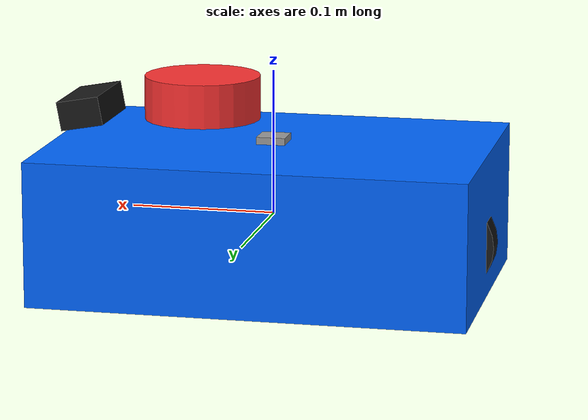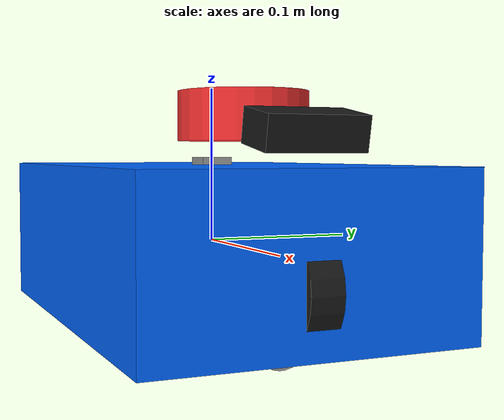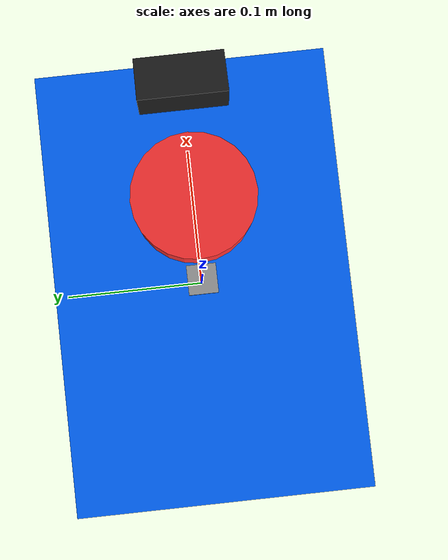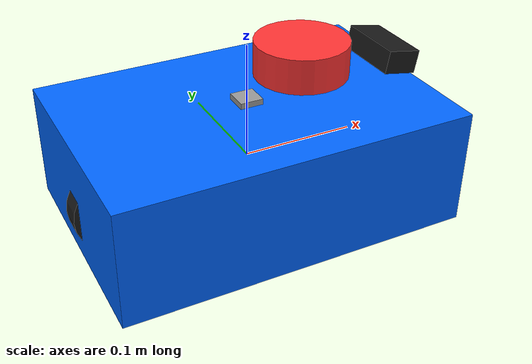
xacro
<?xml version="1.0"?>
<!--
  mini_car：两轮差速小车模型
  Xacro 三大件：property（常量）、macro（可复用块）、include（拆分文件）
-->
<robot xmlns:xacro="http://www.ros.org/wiki/xacro" name="mini_car">

  <!-- ============ 常量：改一处，全车生效 ============ -->
  <xacro:property name="wheel_radius" value="0.035"/>
  <xacro:property name="wheel_width" value="0.02"/>
  <xacro:property name="wheel_separation" value="0.24"/>
  <xacro:property name="base_length" value="0.30"/>
  <xacro:property name="base_width" value="0.20"/>
  <xacro:property name="base_height" value="0.10"/>

  <!-- 材质 -->
  <material name="black"><color rgba="0.1 0.1 0.1 1"/></material>
  <material name="blue"><color rgba="0 0.4 1 1"/></material>
  <material name="red"><color rgba="1 0.2 0.2 1"/></material>
  <material name="gray"><color rgba="0.6 0.6 0.6 1"/></material>

  <!-- 惯性宏：实心圆柱的惯性张量公式（绕柱轴 izz = m*r²/2） -->
  <xacro:macro name="cylinder_inertia" params="m r h">
    <inertial>
      <mass value="${m}"/>
      <inertia ixx="${m*(3*r*r+h*h)/12}" ixy="0" ixz="0"
               iyy="${m*(3*r*r+h*h)/12}" iyz="0"
               izz="${m*r*r/2}"/>
    </inertial>
  </xacro:macro>

  <!-- 轮子宏：左/右轮结构相同，只差安装位置与方向 -->
  <xacro:macro name="wheel" params="prefix x_reflect">
    <link name="${prefix}_wheel">
      <visual>
        <!-- 圆柱默认轴沿 Z，轮子轴应沿 Y，故绕 X 转 90° -->
        <geometry><cylinder radius="${wheel_radius}" length="${wheel_width}"/></geometry>
        <origin xyz="0 0 0" rpy="${pi/2} 0 0"/>
        <material name="black"/>
      </visual>
      <collision>
        <geometry><cylinder radius="${wheel_radius}" length="${wheel_width}"/></geometry>
        <origin xyz="0 0 0" rpy="${pi/2} 0 0"/>
      </collision>
      <xacro:cylinder_inertia m="0.1" r="${wheel_radius}" h="${wheel_width}"/>
    </link>

    <!-- continuous：轮子可无限旋转 -->
    <joint name="${prefix}_wheel_joint" type="continuous">
      <parent link="base_link"/>
      <child link="${prefix}_wheel"/>
      <origin xyz="${x_reflect * wheel_separation/2} 0 ${-base_height/2 + wheel_radius}"/>
      <axis xyz="0 1 0"/>
      <limit effort="10" velocity="10"/>
    </joint>

    <!-- 传动：把执行器(电机)速度映射到关节，ros2_control 读取 -->
    <transmission name="${prefix}_wheel_trans">
      <type>transmission_interface/SimpleTransmission</type>
      <joint name="${prefix}_wheel_joint">
        <hardwareInterface>hardware_interface/VelocityJointInterface</hardwareInterface>
      </joint>
      <actuator name="${prefix}_wheel_motor">
        <hardwareInterface>hardware_interface/VelocityJointInterface</hardwareInterface>
        <mechanicalReduction>1</mechanicalReduction>
      </actuator>
    </transmission>
  </xacro:macro>

  <!-- ============ 车身 ============ -->
  <link name="base_link">
    <visual>
      <geometry><box size="${base_length} ${base_width} ${base_height}"/></geometry>
      <material name="blue"/>
    </visual>
    <collision>
      <geometry><box size="${base_length} ${base_width} ${base_height}"/></geometry>
    </collision>
    <inertial>
      <mass value="1.0"/>
      <inertia ixx="0.006" ixy="0" ixz="0" iyy="0.008" iyz="0" izz="0.012"/>
    </inertial>
  </link>

  <!-- 两个驱动轮 -->
  <xacro:wheel prefix="left" x_reflect="1"/>
  <xacro:wheel prefix="right" x_reflect="-1"/>

  <!-- 万向轮（车头支撑，fixed 关节） -->
  <link name="caster_wheel">
    <visual>
      <geometry><sphere radius="0.015"/></geometry>
      <material name="gray"/>
    </visual>
    <collision>
      <geometry><sphere radius="0.015"/></geometry>
    </collision>
    <inertial>
      <mass value="0.01"/>
      <inertia ixx="0.00001" ixy="0" ixz="0" iyy="0.00001" iyz="0" izz="0.00001"/>
    </inertial>
  </link>
  <joint name="caster_joint" type="fixed">
    <parent link="base_link"/>
    <child link="caster_wheel"/>
    <origin xyz="${base_length/2 - 0.05} 0 ${-base_height/2}"/>
  </joint>

  <!-- ============ 激光雷达 ============ -->
  <link name="lidar_link">
    <visual>
      <geometry><cylinder radius="0.04" length="0.03"/></geometry>
      <material name="red"/>
    </visual>
    <collision>
      <geometry><cylinder radius="0.04" length="0.03"/></geometry>
    </collision>
    <xacro:cylinder_inertia m="0.15" r="0.04" h="0.03"/>
  </link>
  <joint name="lidar_joint" type="fixed">
    <parent link="base_link"/>
    <child link="lidar_link"/>
    <origin xyz="0.05 0 ${base_height/2 + 0.03}"/>
  </joint>
  <gazebo reference="lidar_link">
    <sensor type="ray" name="lidar">
      <pose>0 0 0 0 0 0</pose>
      <ray>
        <scan>
          <horizontal>
            <samples>360</samples>
            <resolution>1</resolution>
            <min_angle>-${pi}</min_angle>
            <max_angle>${pi}</max_angle>
          </horizontal>
        </scan>
        <range>
          <min>0.1</min>
          <max>12.0</max>
          <resolution>0.01</resolution>
        </range>
      </ray>
      <plugin name="gazebo_ros_lidar" filename="libgazebo_ros_ray_sensor.so">
        <ros>
          <namespace>/mini_car</namespace>
          <remapping>~/out:=scan</remapping>
        </ros>
        <output_type>sensor_msgs/LaserScan</output_type>
        <frame_name>lidar_link</frame_name>
      </plugin>
    </sensor>
  </gazebo>

  <!-- ============ IMU ============ -->
  <link name="imu_link">
    <visual>
      <geometry><box size="0.02 0.02 0.01"/></geometry>
      <material name="gray"/>
    </visual>
    <collision>
      <geometry><box size="0.02 0.02 0.01"/></geometry>
    </collision>
    <inertial>
      <mass value="0.01"/>
      <inertia ixx="0.00001" ixy="0" ixz="0" iyy="0.00001" iyz="0" izz="0.00001"/>
    </inertial>
  </link>
  <joint name="imu_joint" type="fixed">
    <parent link="base_link"/>
    <child link="imu_link"/>
    <origin xyz="0 0 ${base_height/2}"/>
  </joint>
  <gazebo reference="imu_link">
    <sensor type="imu" name="imu">
      <plugin name="gazebo_ros_imu" filename="libgazebo_ros_imu_sensor.so">
        <ros>
          <namespace>/mini_car</namespace>
          <remapping>~/out:=imu</remapping>
        </ros>
        <initial_orientation_as_reference>false</initial_orientation_as_reference>
      </plugin>
    </sensor>
  </gazebo>

  <!-- ============ 深度相机 ============ -->
  <link name="camera_link">
    <visual>
      <geometry><box size="0.03 0.06 0.02"/></geometry>
      <material name="black"/>
    </visual>
    <collision>
      <geometry><box size="0.03 0.06 0.02"/></geometry>
    </collision>
    <inertial>
      <mass value="0.02"/>
      <inertia ixx="0.00001" ixy="0" ixz="0" iyy="0.00001" iyz="0" izz="0.00001"/>
    </inertial>
  </link>
  <joint name="camera_joint" type="fixed">
    <parent link="base_link"/>
    <child link="camera_link"/>
    <!-- 装在车头，向下俯视 10° -->
    <origin xyz="${base_length/2 - 0.02} 0 ${base_height/2 + 0.02}" rpy="0 0.18 0"/>
  </joint>
  <gazebo reference="camera_link">
    <sensor type="depth" name="camera">
      <plugin name="camera_controller" filename="libgazebo_ros_camera.so">
        <ros>
          <namespace>/mini_car</namespace>
          <remapping>image_raw:=image_raw</remapping>
          <remapping>depth/image_raw:=depth/image_raw</remapping>
          <remapping>points:=points</remapping>
        </ros>
        <camera_name>camera</camera_name>
        <frame_name>camera_link</frame_name>
        <update_rate>10</update_rate>
        <image>
          <width>640</width>
          <height>480</height>
          <format>R8G8B8</format>
        </image>
      </plugin>
    </sensor>
  </gazebo>

  <!-- ============ ros2_control：控制器与仿真的桥梁 ============ -->
  <ros2_control name="GazeboSystem" type="system">
    <hardware>
      <plugin>gazebo_ros2_control/GazeboSystem</plugin>
    </hardware>
    <joint name="left_wheel_joint">
      <command_interface name="velocity">
        <state_interface name="velocity"/>
        <state_interface name="position"/>
      </command_interface>
    </joint>
    <joint name="right_wheel_joint">
      <command_interface name="velocity">
        <state_interface name="velocity"/>
        <state_interface name="position"/>
      </command_interface>
    </joint>
  </ros2_control>

  <gazebo>
    <plugin filename="libgazebo_ros2_control.so" name="gazebo_ros2_control">
      <!-- $(find) 由 gazebo_ros 的 launch 解析，指向 install 后的 share 目录 -->
      <parameters>$(find ch6_robot)/config/diff_drive.yaml</parameters>
    </plugin>
  </gazebo>

</robot>
